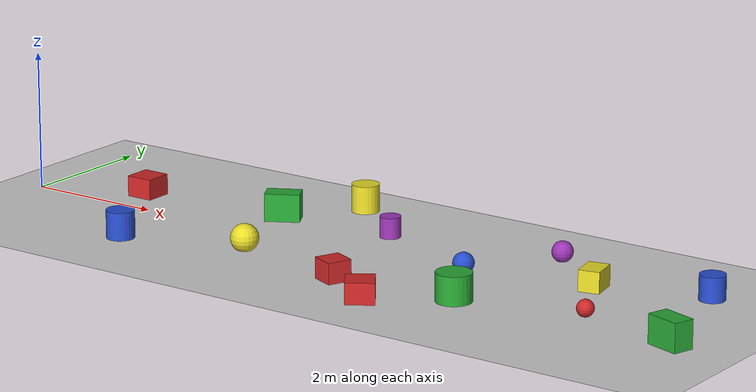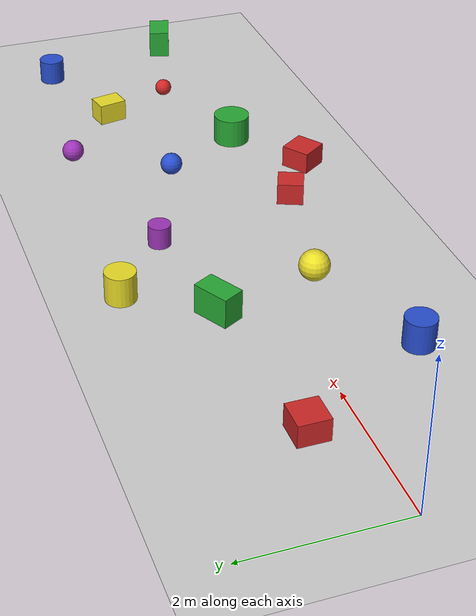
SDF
<?xml version="1.0" ?>
<sdf version="1.6">
  <world name="mechdog_objects_complex">

    <physics type="ode">
      <max_step_size>0.001</max_step_size>
      <real_time_factor>1.0</real_time_factor>
      <real_time_update_rate>1000</real_time_update_rate>
      <gravity>0 0 -9.81</gravity>
    </physics>

    <scene>
      <ambient>0.4 0.4 0.4 1</ambient>
      <background>0.7 0.7 0.7 1</background>
      <shadows>true</shadows>
    </scene>

    <light name="sun" type="directional">
      <cast_shadows>true</cast_shadows>
      <pose>0 0 10 0 0 0</pose>
      <diffuse>0.8 0.8 0.8 1</diffuse>
      <specular>0.2 0.2 0.2 1</specular>
      <attenuation><range>1000</range><constant>0.9</constant><linear>0.01</linear><quadratic>0.001</quadratic></attenuation>
      <direction>-0.5 0.1 -0.9</direction>
    </light>

    <model name="ground_plane">
      <static>true</static>
      <link name="link">
        <collision name="collision">
          <geometry><plane><normal>0 0 1</normal><size>100 100</size></plane></geometry>
          <surface><friction><ode><mu>0.8</mu><mu2>0.8</mu2></ode></friction></surface>
        </collision>
        <visual name="visual">
          <cast_shadows>false</cast_shadows>
          <geometry><plane><normal>0 0 1</normal><size>100 100</size></plane></geometry>
          <material><script><uri>file://media/materials/scripts/gazebo.material</uri><name>Gazebo/Grey</name></script></material>
        </visual>
      </link>
    </model>

    <model name="obstacle_box_1"><static>true</static><pose>1.5 0.6 0.15 0 0 0</pose><link name="link"><collision name="collision"><geometry><box><size>0.4 0.4 0.3</size></box></geometry></collision><visual name="visual"><geometry><box><size>0.4 0.4 0.3</size></box></geometry><material><script><uri>file://media/materials/scripts/gazebo.material</uri><name>Gazebo/Red</name></script></material></visual></link></model>
    <model name="obstacle_cylinder_1"><static>true</static><pose>2.5 -1.2 0.2 0 0 0</pose><link name="link"><collision name="collision"><geometry><cylinder><radius>0.2</radius><length>0.4</length></cylinder></geometry></collision><visual name="visual"><geometry><cylinder><radius>0.2</radius><length>0.4</length></cylinder></geometry><material><script><uri>file://media/materials/scripts/gazebo.material</uri><name>Gazebo/Blue</name></script></material></visual></link></model>
    <model name="obstacle_box_2"><static>true</static><pose>3.8 0.8 0.2 0 0 0.5</pose><link name="link"><collision name="collision"><geometry><box><size>0.5 0.3 0.4</size></box></geometry></collision><visual name="visual"><geometry><box><size>0.5 0.3 0.4</size></box></geometry><material><script><uri>file://media/materials/scripts/gazebo.material</uri><name>Gazebo/Green</name></script></material></visual></link></model>
    <model name="obstacle_sphere_1"><static>true</static><pose>4.2 -0.6 0.15 0 0 0</pose><link name="link"><collision name="collision"><geometry><sphere><radius>0.2</radius></sphere></geometry></collision><visual name="visual"><geometry><sphere><radius>0.2</radius></sphere></geometry><material><script><uri>file://media/materials/scripts/gazebo.material</uri><name>Gazebo/Yellow</name></script></material></visual></link></model>
    <model name="obstacle_cylinder_2"><static>true</static><pose>5.5 1.0 0.15 0 0 0</pose><link name="link"><collision name="collision"><geometry><cylinder><radius>0.15</radius><length>0.3</length></cylinder></geometry></collision><visual name="visual"><geometry><cylinder><radius>0.15</radius><length>0.3</length></cylinder></geometry><material><script><uri>file://media/materials/scripts/gazebo.material</uri><name>Gazebo/Purple</name></script></material></visual></link></model>
    <model name="obstacle_box_3"><static>true</static><pose>6.0 -1.0 0.15 0 0 -0.4</pose><link name="link"><collision name="collision"><geometry><box><size>0.35 0.35 0.3</size></box></geometry></collision><visual name="visual"><geometry><box><size>0.35 0.35 0.3</size></box></geometry><material><script><uri>file://media/materials/scripts/gazebo.material</uri><name>Gazebo/Red</name></script></material></visual></link></model>
    <model name="obstacle_sphere_2"><static>true</static><pose>7.2 0.3 0.12 0 0 0</pose><link name="link"><collision name="collision"><geometry><sphere><radius>0.15</radius></sphere></geometry></collision><visual name="visual"><geometry><sphere><radius>0.15</radius></sphere></geometry><material><script><uri>file://media/materials/scripts/gazebo.material</uri><name>Gazebo/Blue</name></script></material></visual></link></model>
    <model name="obstacle_cylinder_3"><static>true</static><pose>7.8 -0.8 0.2 0 0 0</pose><link name="link"><collision name="collision"><geometry><cylinder><radius>0.25</radius><length>0.4</length></cylinder></geometry></collision><visual name="visual"><geometry><cylinder><radius>0.25</radius><length>0.4</length></cylinder></geometry><material><script><uri>file://media/materials/scripts/gazebo.material</uri><name>Gazebo/Green</name></script></material></visual></link></model>
    <model name="obstacle_box_4"><static>true</static><pose>9.0 0.7 0.15 0 0 0.2</pose><link name="link"><collision name="collision"><geometry><box><size>0.3 0.4 0.3</size></box></geometry></collision><visual name="visual"><geometry><box><size>0.3 0.4 0.3</size></box></geometry><material><script><uri>file://media/materials/scripts/gazebo.material</uri><name>Gazebo/Yellow</name></script></material></visual></link></model>
    <model name="obstacle_sphere_3"><static>true</static><pose>9.5 -0.3 0.1 0 0 0</pose><link name="link"><collision name="collision"><geometry><sphere><radius>0.12</radius></sphere></geometry></collision><visual name="visual"><geometry><sphere><radius>0.12</radius></sphere></geometry><material><script><uri>file://media/materials/scripts/gazebo.material</uri><name>Gazebo/Red</name></script></material></visual></link></model>
    <model name="obstacle_cylinder_4"><static>true</static><pose>10.5 1.2 0.18 0 0 0</pose><link name="link"><collision name="collision"><geometry><cylinder><radius>0.18</radius><length>0.35</length></cylinder></geometry></collision><visual name="visual"><geometry><cylinder><radius>0.18</radius><length>0.35</length></cylinder></geometry><material><script><uri>file://media/materials/scripts/gazebo.material</uri><name>Gazebo/Blue</name></script></material></visual></link></model>
    <model name="obstacle_box_5"><static>true</static><pose>11.0 -0.7 0.2 0 0 -0.3</pose><link name="link"><collision name="collision"><geometry><box><size>0.5 0.3 0.4</size></box></geometry></collision><visual name="visual"><geometry><box><size>0.5 0.3 0.4</size></box></geometry><material><script><uri>file://media/materials/scripts/gazebo.material</uri><name>Gazebo/Green</name></script></material></visual></link></model>
    <model name="obstacle_sphere_4"><static>true</static><pose>8.0 1.5 0.12 0 0 0</pose><link name="link"><collision name="collision"><geometry><sphere><radius>0.15</radius></sphere></geometry></collision><visual name="visual"><geometry><sphere><radius>0.15</radius></sphere></geometry><material><script><uri>file://media/materials/scripts/gazebo.material</uri><name>Gazebo/Purple</name></script></material></visual></link></model>
    <model name="obstacle_cylinder_5"><static>true</static><pose>4.5 1.8 0.2 0 0 0</pose><link name="link"><collision name="collision"><geometry><cylinder><radius>0.2</radius><length>0.4</length></cylinder></geometry></collision><visual name="visual"><geometry><cylinder><radius>0.2</radius><length>0.4</length></cylinder></geometry><material><script><uri>file://media/materials/scripts/gazebo.material</uri><name>Gazebo/Yellow</name></script></material></visual></link></model>
    <model name="obstacle_box_6"><static>true</static><pose>6.8 -1.5 0.15 0 0 0.6</pose><link name="link"><collision name="collision"><geometry><box><size>0.4 0.4 0.3</size></box></geometry></collision><visual name="visual"><geometry><box><size>0.4 0.4 0.3</size></box></geometry><material><script><uri>file://media/materials/scripts/gazebo.material</uri><name>Gazebo/Red</name></script></material></visual></link></model>

    <gui fullscreen='0'>
      <camera name='user_camera'>
        <pose>-3.0 5.0 12.0 0 0.4 0.5</pose>
        <view_controller>orbit</view_controller>
      </camera>
    </gui>

  </world>
</sdf>
